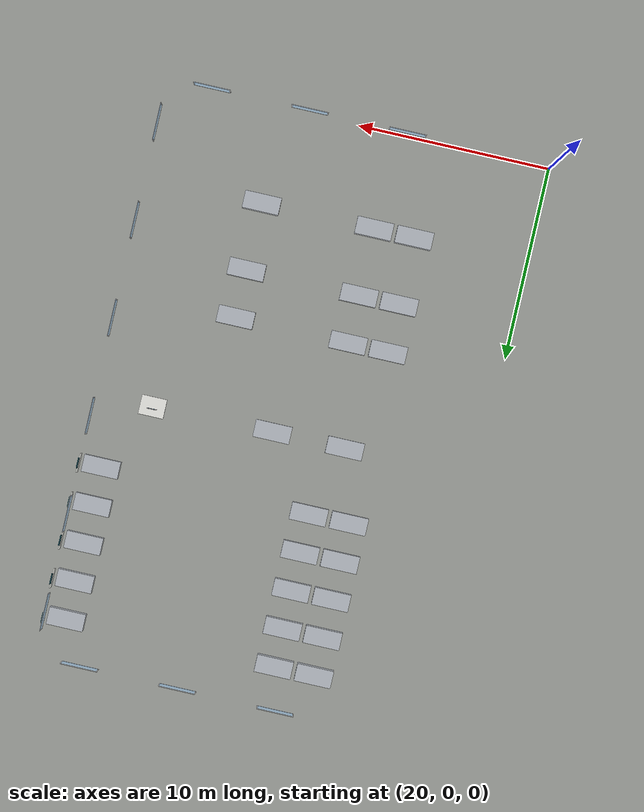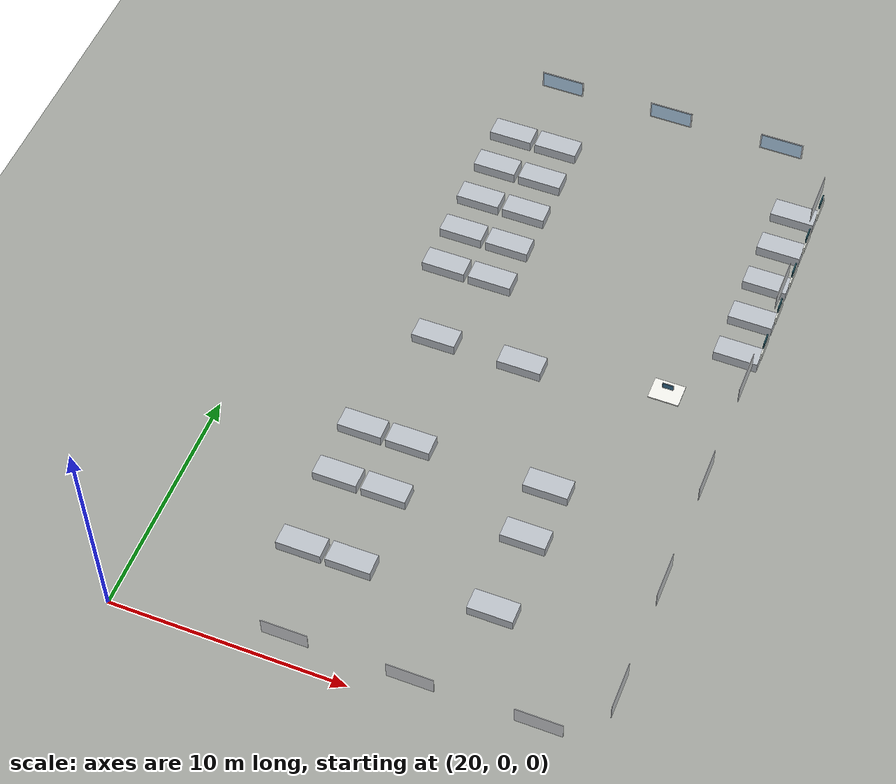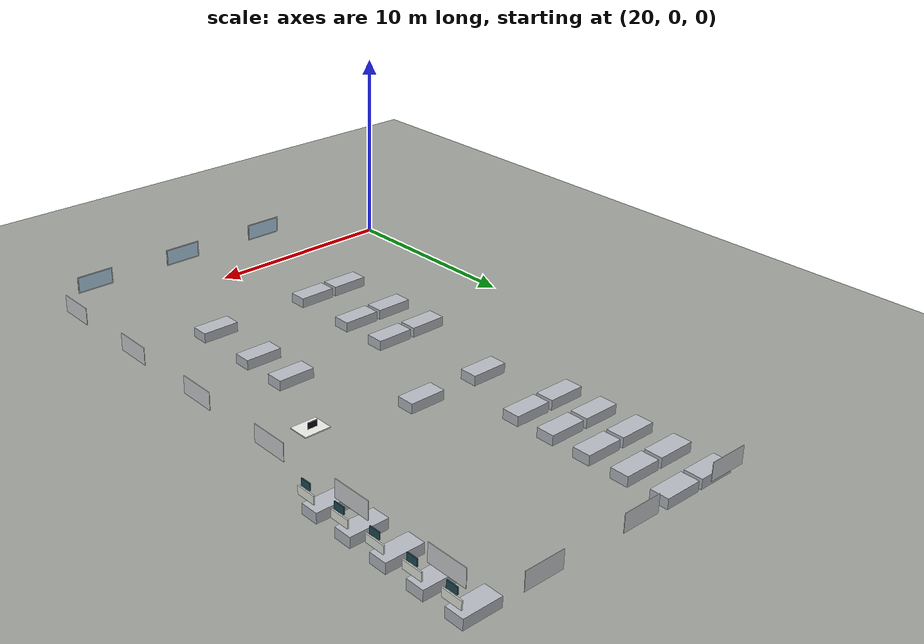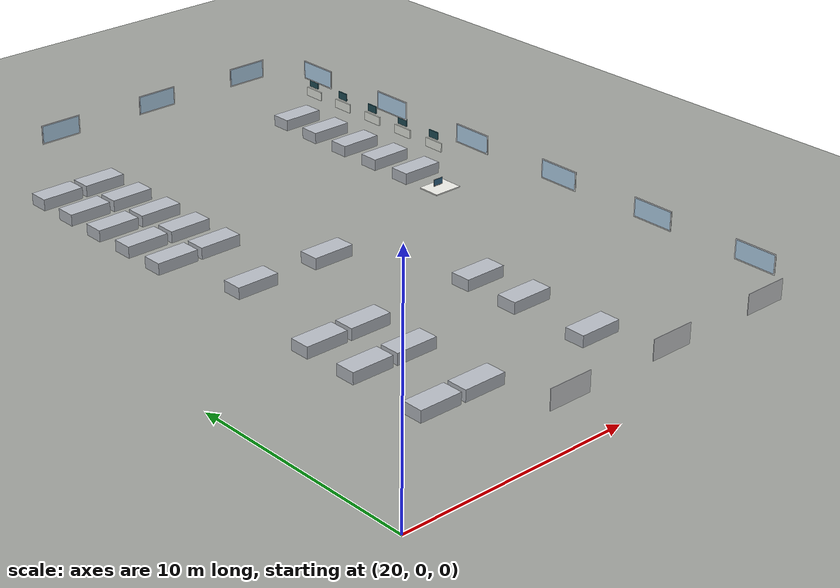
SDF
<sdf version="1.9">
 <world name="hospital">
  <model name="ground_plane">
   <static>true</static>
   <link name="link">
    <collision name="collision">
     <geometry><plane><normal>0 0 1</normal><size>200 200</size></plane></geometry>
    </collision>
    <visual name="visual">
     <pose>0 0 -0.03 0 0 0</pose>
     <cast_shadows>false</cast_shadows>
     <geometry><plane><normal>0 0 1</normal><size>200 200</size></plane></geometry>
     <material>
      <ambient>0.310 0.315 0.305 1.0</ambient>
      <diffuse>0.620 0.630 0.610 1.0</diffuse>
      <specular>0.14 0.14 0.14 1</specular>
      <emissive>0.000 0.000 0.000 1</emissive>
     </material>
    </visual>
   </link>
  </model>
  <model name="bed_7">
   <static>true</static>
   <pose>25.95 20.0 0.25 0 0 0</pose>
   <link name="link">
    <collision name="c">
     <geometry><box><size>1.8999999999999986 0.8999999999999986 0.5</size></box></geometry>
    </collision>
    <visual name="v">
     <visibility_flags>2</visibility_flags>
     <geometry><box><size>1.8999999999999986 0.8999999999999986 0.5</size></box></geometry>
     <material>
      <ambient>0.360 0.370 0.385 1.0</ambient>
      <diffuse>0.720 0.740 0.770 1.0</diffuse>
      <specular>0.14 0.14 0.14 1</specular>
      <emissive>0.000 0.000 0.000 1</emissive>
     </material>
    </visual>
   </link>
  </model>
  <model name="bed_9">
   <static>true</static>
   <pose>25.95 24.0 0.25 0 0 0</pose>
   <link name="link">
    <collision name="c">
     <geometry><box><size>1.8999999999999986 0.8999999999999986 0.5</size></box></geometry>
    </collision>
    <visual name="v">
     <visibility_flags>2</visibility_flags>
     <geometry><box><size>1.8999999999999986 0.8999999999999986 0.5</size></box></geometry>
     <material>
      <ambient>0.360 0.370 0.385 1.0</ambient>
      <diffuse>0.720 0.740 0.770 1.0</diffuse>
      <specular>0.14 0.14 0.14 1</specular>
      <emissive>0.000 0.000 0.000 1</emissive>
     </material>
    </visual>
   </link>
  </model>
  <model name="bed_11">
   <static>true</static>
   <pose>25.95 28.0 0.25 0 0 0</pose>
   <link name="link">
    <collision name="c">
     <geometry><box><size>1.8999999999999986 0.8999999999999986 0.5</size></box></geometry>
    </collision>
    <visual name="v">
     <visibility_flags>2</visibility_flags>
     <geometry><box><size>1.8999999999999986 0.8999999999999986 0.5</size></box></geometry>
     <material>
      <ambient>0.360 0.370 0.385 1.0</ambient>
      <diffuse>0.720 0.740 0.770 1.0</diffuse>
      <specular>0.14 0.14 0.14 1</specular>
      <emissive>0.000 0.000 0.000 1</emissive>
     </material>
    </visual>
   </link>
  </model>
  <model name="bed_12">
   <static>true</static>
   <pose>28.05 20.0 0.25 0 0 0</pose>
   <link name="link">
    <collision name="c">
     <geometry><box><size>1.8999999999999986 0.8999999999999986 0.5</size></box></geometry>
    </collision>
    <visual name="v">
     <visibility_flags>2</visibility_flags>
     <geometry><box><size>1.8999999999999986 0.8999999999999986 0.5</size></box></geometry>
     <material>
      <ambient>0.360 0.370 0.385 1.0</ambient>
      <diffuse>0.720 0.740 0.770 1.0</diffuse>
      <specular>0.14 0.14 0.14 1</specular>
      <emissive>0.000 0.000 0.000 1</emissive>
     </material>
    </visual>
   </link>
  </model>
  <model name="bed_13">
   <static>true</static>
   <pose>38.95 20.0 0.25 0 0 0</pose>
   <link name="link">
    <collision name="c">
     <geometry><box><size>1.8999999999999986 0.8999999999999986 0.5</size></box></geometry>
    </collision>
    <visual name="v">
     <visibility_flags>2</visibility_flags>
     <geometry><box><size>1.8999999999999986 0.8999999999999986 0.5</size></box></geometry>
     <material>
      <ambient>0.360 0.370 0.385 1.0</ambient>
      <diffuse>0.720 0.740 0.770 1.0</diffuse>
      <specular>0.14 0.14 0.14 1</specular>
      <emissive>0.000 0.000 0.000 1</emissive>
     </material>
    </visual>
   </link>
  </model>
  <model name="bed_14">
   <static>true</static>
   <pose>28.05 24.0 0.25 0 0 0</pose>
   <link name="link">
    <collision name="c">
     <geometry><box><size>1.8999999999999986 0.8999999999999986 0.5</size></box></geometry>
    </collision>
    <visual name="v">
     <visibility_flags>2</visibility_flags>
     <geometry><box><size>1.8999999999999986 0.8999999999999986 0.5</size></box></geometry>
     <material>
      <ambient>0.360 0.370 0.385 1.0</ambient>
      <diffuse>0.720 0.740 0.770 1.0</diffuse>
      <specular>0.14 0.14 0.14 1</specular>
      <emissive>0.000 0.000 0.000 1</emissive>
     </material>
    </visual>
   </link>
  </model>
  <model name="bed_15">
   <static>true</static>
   <pose>38.95 24.0 0.25 0 0 0</pose>
   <link name="link">
    <collision name="c">
     <geometry><box><size>1.8999999999999986 0.8999999999999986 0.5</size></box></geometry>
    </collision>
    <visual name="v">
     <visibility_flags>2</visibility_flags>
     <geometry><box><size>1.8999999999999986 0.8999999999999986 0.5</size></box></geometry>
     <material>
      <ambient>0.360 0.370 0.385 1.0</ambient>
      <diffuse>0.720 0.740 0.770 1.0</diffuse>
      <specular>0.14 0.14 0.14 1</specular>
      <emissive>0.000 0.000 0.000 1</emissive>
     </material>
    </visual>
   </link>
  </model>
  <model name="bed_16">
   <static>true</static>
   <pose>28.05 28.0 0.25 0 0 0</pose>
   <link name="link">
    <collision name="c">
     <geometry><box><size>1.8999999999999986 0.8999999999999986 0.5</size></box></geometry>
    </collision>
    <visual name="v">
     <visibility_flags>2</visibility_flags>
     <geometry><box><size>1.8999999999999986 0.8999999999999986 0.5</size></box></geometry>
     <material>
      <ambient>0.360 0.370 0.385 1.0</ambient>
      <diffuse>0.720 0.740 0.770 1.0</diffuse>
      <specular>0.14 0.14 0.14 1</specular>
      <emissive>0.000 0.000 0.000 1</emissive>
     </material>
    </visual>
   </link>
  </model>
  <model name="bed_17">
   <static>true</static>
   <pose>38.95 28.0 0.25 0 0 0</pose>
   <link name="link">
    <collision name="c">
     <geometry><box><size>1.8999999999999986 0.8999999999999986 0.5</size></box></geometry>
    </collision>
    <visual name="v">
     <visibility_flags>2</visibility_flags>
     <geometry><box><size>1.8999999999999986 0.8999999999999986 0.5</size></box></geometry>
     <material>
      <ambient>0.360 0.370 0.385 1.0</ambient>
      <diffuse>0.720 0.740 0.770 1.0</diffuse>
      <specular>0.14 0.14 0.14 1</specular>
      <emissive>0.000 0.000 0.000 1</emissive>
     </material>
    </visual>
   </link>
  </model>
  <model name="bed_19">
   <static>true</static>
   <pose>25.95 5.0 0.25 0 0 0</pose>
   <link name="link">
    <collision name="c">
     <geometry><box><size>1.8999999999999986 0.9000000000000004 0.5</size></box></geometry>
    </collision>
    <visual name="v">
     <visibility_flags>2</visibility_flags>
     <geometry><box><size>1.8999999999999986 0.9000000000000004 0.5</size></box></geometry>
     <material>
      <ambient>0.360 0.370 0.385 1.0</ambient>
      <diffuse>0.720 0.740 0.770 1.0</diffuse>
      <specular>0.14 0.14 0.14 1</specular>
      <emissive>0.000 0.000 0.000 1</emissive>
     </material>
    </visual>
   </link>
  </model>
  <model name="bed_21">
   <static>true</static>
   <pose>25.95 8.5 0.25 0 0 0</pose>
   <link name="link">
    <collision name="c">
     <geometry><box><size>1.8999999999999986 0.8999999999999986 0.5</size></box></geometry>
    </collision>
    <visual name="v">
     <visibility_flags>2</visibility_flags>
     <geometry><box><size>1.8999999999999986 0.8999999999999986 0.5</size></box></geometry>
     <material>
      <ambient>0.360 0.370 0.385 1.0</ambient>
      <diffuse>0.720 0.740 0.770 1.0</diffuse>
      <specular>0.14 0.14 0.14 1</specular>
      <emissive>0.000 0.000 0.000 1</emissive>
     </material>
    </visual>
   </link>
  </model>
  <model name="bed_22">
   <static>true</static>
   <pose>28.05 5.0 0.25 0 0 0</pose>
   <link name="link">
    <collision name="c">
     <geometry><box><size>1.8999999999999986 0.9000000000000004 0.5</size></box></geometry>
    </collision>
    <visual name="v">
     <visibility_flags>2</visibility_flags>
     <geometry><box><size>1.8999999999999986 0.9000000000000004 0.5</size></box></geometry>
     <material>
      <ambient>0.360 0.370 0.385 1.0</ambient>
      <diffuse>0.720 0.740 0.770 1.0</diffuse>
      <specular>0.14 0.14 0.14 1</specular>
      <emissive>0.000 0.000 0.000 1</emissive>
     </material>
    </visual>
   </link>
  </model>
  <model name="bed_23">
   <static>true</static>
   <pose>33.95 5.0 0.25 0 0 0</pose>
   <link name="link">
    <collision name="c">
     <geometry><box><size>1.8999999999999986 0.9000000000000004 0.5</size></box></geometry>
    </collision>
    <visual name="v">
     <visibility_flags>2</visibility_flags>
     <geometry><box><size>1.8999999999999986 0.9000000000000004 0.5</size></box></geometry>
     <material>
      <ambient>0.360 0.370 0.385 1.0</ambient>
      <diffuse>0.720 0.740 0.770 1.0</diffuse>
      <specular>0.14 0.14 0.14 1</specular>
      <emissive>0.000 0.000 0.000 1</emissive>
     </material>
    </visual>
   </link>
  </model>
  <model name="bed_24">
   <static>true</static>
   <pose>28.05 8.5 0.25 0 0 0</pose>
   <link name="link">
    <collision name="c">
     <geometry><box><size>1.8999999999999986 0.8999999999999986 0.5</size></box></geometry>
    </collision>
    <visual name="v">
     <visibility_flags>2</visibility_flags>
     <geometry><box><size>1.8999999999999986 0.8999999999999986 0.5</size></box></geometry>
     <material>
      <ambient>0.360 0.370 0.385 1.0</ambient>
      <diffuse>0.720 0.740 0.770 1.0</diffuse>
      <specular>0.14 0.14 0.14 1</specular>
      <emissive>0.000 0.000 0.000 1</emissive>
     </material>
    </visual>
   </link>
  </model>
  <model name="bed_25">
   <static>true</static>
   <pose>33.95 8.5 0.25 0 0 0</pose>
   <link name="link">
    <collision name="c">
     <geometry><box><size>1.8999999999999986 0.8999999999999986 0.5</size></box></geometry>
    </collision>
    <visual name="v">
     <visibility_flags>2</visibility_flags>
     <geometry><box><size>1.8999999999999986 0.8999999999999986 0.5</size></box></geometry>
     <material>
      <ambient>0.360 0.370 0.385 1.0</ambient>
      <diffuse>0.720 0.740 0.770 1.0</diffuse>
      <specular>0.14 0.14 0.14 1</specular>
      <emissive>0.000 0.000 0.000 1</emissive>
     </material>
    </visual>
   </link>
  </model>
  <model name="bed_30">
   <static>true</static>
   <pose>27.0 16.3 0.25 0 0 0</pose>
   <link name="link">
    <collision name="c">
     <geometry><box><size>1.8999999999999986 0.9000000000000004 0.5</size></box></geometry>
    </collision>
    <visual name="v">
     <visibility_flags>2</visibility_flags>
     <geometry><box><size>1.8999999999999986 0.9000000000000004 0.5</size></box></geometry>
     <material>
      <ambient>0.360 0.370 0.385 1.0</ambient>
      <diffuse>0.720 0.740 0.770 1.0</diffuse>
      <specular>0.14 0.14 0.14 1</specular>
      <emissive>0.000 0.000 0.000 1</emissive>
     </material>
    </visual>
   </link>
  </model>
  <model name="bed_31">
   <static>true</static>
   <pose>30.8 16.3 0.25 0 0 0</pose>
   <link name="link">
    <collision name="c">
     <geometry><box><size>1.8999999999999986 0.9000000000000004 0.5</size></box></geometry>
    </collision>
    <visual name="v">
     <visibility_flags>2</visibility_flags>
     <geometry><box><size>1.8999999999999986 0.9000000000000004 0.5</size></box></geometry>
     <material>
      <ambient>0.360 0.370 0.385 1.0</ambient>
      <diffuse>0.720 0.740 0.770 1.0</diffuse>
      <specular>0.14 0.14 0.14 1</specular>
      <emissive>0.000 0.000 0.000 1</emissive>
     </material>
    </visual>
   </link>
  </model>
  <model name="bed_37">
   <static>true</static>
   <pose>25.95 22.0 0.25 0 0 0</pose>
   <link name="link">
    <collision name="c">
     <geometry><box><size>1.8999999999999986 0.8999999999999986 0.5</size></box></geometry>
    </collision>
    <visual name="v">
     <visibility_flags>2</visibility_flags>
     <geometry><box><size>1.8999999999999986 0.8999999999999986 0.5</size></box></geometry>
     <material>
      <ambient>0.360 0.370 0.385 1.0</ambient>
      <diffuse>0.720 0.740 0.770 1.0</diffuse>
      <specular>0.14 0.14 0.14 1</specular>
      <emissive>0.000 0.000 0.000 1</emissive>
     </material>
    </visual>
   </link>
  </model>
  <model name="bed_39">
   <static>true</static>
   <pose>25.95 26.0 0.25 0 0 0</pose>
   <link name="link">
    <collision name="c">
     <geometry><box><size>1.8999999999999986 0.8999999999999986 0.5</size></box></geometry>
    </collision>
    <visual name="v">
     <visibility_flags>2</visibility_flags>
     <geometry><box><size>1.8999999999999986 0.8999999999999986 0.5</size></box></geometry>
     <material>
      <ambient>0.360 0.370 0.385 1.0</ambient>
      <diffuse>0.720 0.740 0.770 1.0</diffuse>
      <specular>0.14 0.14 0.14 1</specular>
      <emissive>0.000 0.000 0.000 1</emissive>
     </material>
    </visual>
   </link>
  </model>
  <model name="bed_40">
   <static>true</static>
   <pose>28.05 22.0 0.25 0 0 0</pose>
   <link name="link">
    <collision name="c">
     <geometry><box><size>1.8999999999999986 0.8999999999999986 0.5</size></box></geometry>
    </collision>
    <visual name="v">
     <visibility_flags>2</visibility_flags>
     <geometry><box><size>1.8999999999999986 0.8999999999999986 0.5</size></box></geometry>
     <material>
      <ambient>0.360 0.370 0.385 1.0</ambient>
      <diffuse>0.720 0.740 0.770 1.0</diffuse>
      <specular>0.14 0.14 0.14 1</specular>
      <emissive>0.000 0.000 0.000 1</emissive>
     </material>
    </visual>
   </link>
  </model>
  <model name="bed_41">
   <static>true</static>
   <pose>38.95 22.0 0.25 0 0 0</pose>
   <link name="link">
    <collision name="c">
     <geometry><box><size>1.8999999999999986 0.8999999999999986 0.5</size></box></geometry>
    </collision>
    <visual name="v">
     <visibility_flags>2</visibility_flags>
     <geometry><box><size>1.8999999999999986 0.8999999999999986 0.5</size></box></geometry>
     <material>
      <ambient>0.360 0.370 0.385 1.0</ambient>
      <diffuse>0.720 0.740 0.770 1.0</diffuse>
      <specular>0.14 0.14 0.14 1</specular>
      <emissive>0.000 0.000 0.000 1</emissive>
     </material>
    </visual>
   </link>
  </model>
  <model name="bed_42">
   <static>true</static>
   <pose>28.05 26.0 0.25 0 0 0</pose>
   <link name="link">
    <collision name="c">
     <geometry><box><size>1.8999999999999986 0.8999999999999986 0.5</size></box></geometry>
    </collision>
    <visual name="v">
     <visibility_flags>2</visibility_flags>
     <geometry><box><size>1.8999999999999986 0.8999999999999986 0.5</size></box></geometry>
     <material>
      <ambient>0.360 0.370 0.385 1.0</ambient>
      <diffuse>0.720 0.740 0.770 1.0</diffuse>
      <specular>0.14 0.14 0.14 1</specular>
      <emissive>0.000 0.000 0.000 1</emissive>
     </material>
    </visual>
   </link>
  </model>
  <model name="bed_43">
   <static>true</static>
   <pose>38.95 26.0 0.25 0 0 0</pose>
   <link name="link">
    <collision name="c">
     <geometry><box><size>1.8999999999999986 0.8999999999999986 0.5</size></box></geometry>
    </collision>
    <visual name="v">
     <visibility_flags>2</visibility_flags>
     <geometry><box><size>1.8999999999999986 0.8999999999999986 0.5</size></box></geometry>
     <material>
      <ambient>0.360 0.370 0.385 1.0</ambient>
      <diffuse>0.720 0.740 0.770 1.0</diffuse>
      <specular>0.14 0.14 0.14 1</specular>
      <emissive>0.000 0.000 0.000 1</emissive>
     </material>
    </visual>
   </link>
  </model>
  <model name="bed_45">
   <static>true</static>
   <pose>25.95 11.0 0.25 0 0 0</pose>
   <link name="link">
    <collision name="c">
     <geometry><box><size>1.8999999999999986 0.8999999999999986 0.5</size></box></geometry>
    </collision>
    <visual name="v">
     <visibility_flags>2</visibility_flags>
     <geometry><box><size>1.8999999999999986 0.8999999999999986 0.5</size></box></geometry>
     <material>
      <ambient>0.360 0.370 0.385 1.0</ambient>
      <diffuse>0.720 0.740 0.770 1.0</diffuse>
      <specular>0.14 0.14 0.14 1</specular>
      <emissive>0.000 0.000 0.000 1</emissive>
     </material>
    </visual>
   </link>
  </model>
  <model name="bed_46">
   <static>true</static>
   <pose>28.05 11.0 0.25 0 0 0</pose>
   <link name="link">
    <collision name="c">
     <geometry><box><size>1.8999999999999986 0.8999999999999986 0.5</size></box></geometry>
    </collision>
    <visual name="v">
     <visibility_flags>2</visibility_flags>
     <geometry><box><size>1.8999999999999986 0.8999999999999986 0.5</size></box></geometry>
     <material>
      <ambient>0.360 0.370 0.385 1.0</ambient>
      <diffuse>0.720 0.740 0.770 1.0</diffuse>
      <specular>0.14 0.14 0.14 1</specular>
      <emissive>0.000 0.000 0.000 1</emissive>
     </material>
    </visual>
   </link>
  </model>
  <model name="bed_47">
   <static>true</static>
   <pose>33.95 11.0 0.25 0 0 0</pose>
   <link name="link">
    <collision name="c">
     <geometry><box><size>1.8999999999999986 0.8999999999999986 0.5</size></box></geometry>
    </collision>
    <visual name="v">
     <visibility_flags>2</visibility_flags>
     <geometry><box><size>1.8999999999999986 0.8999999999999986 0.5</size></box></geometry>
     <material>
      <ambient>0.360 0.370 0.385 1.0</ambient>
      <diffuse>0.720 0.740 0.770 1.0</diffuse>
      <specular>0.14 0.14 0.14 1</specular>
      <emissive>0.000 0.000 0.000 1</emissive>
     </material>
    </visual>
   </link>
  </model>
  <model name="bed_13_panel">
   <static>true</static>
   <pose>40.010000000000005 20.0 1.15 0 0 0</pose>
   <link name="link">
    <visual name="v">
     <cast_shadows>false</cast_shadows>
     <geometry><box><size>0.06 0.9899999999999985 0.4</size></box></geometry>
     <material>
      <ambient>0.460 0.465 0.450 1.0</ambient>
      <diffuse>0.920 0.930 0.900 1.0</diffuse>
      <specular>0.14 0.14 0.14 1</specular>
      <emissive>0.000 0.000 0.000 1</emissive>
     </material>
    </visual>
   </link>
  </model>
  <model name="bed_13_monitor">
   <static>true</static>
   <pose>40.010000000000005 20.0 1.615 0 0 0</pose>
   <link name="link">
    <visual name="v">
     <cast_shadows>false</cast_shadows>
     <geometry><box><size>0.05 0.5444999999999992 0.33</size></box></geometry>
     <material>
      <ambient>0.060 0.150 0.170 1.0</ambient>
      <diffuse>0.120 0.300 0.340 1.0</diffuse>
      <specular>0.14 0.14 0.14 1</specular>
      <emissive>0.042 0.105 0.119 1</emissive>
     </material>
    </visual>
   </link>
  </model>
  <model name="bed_15_panel">
   <static>true</static>
   <pose>40.010000000000005 24.0 1.15 0 0 0</pose>
   <link name="link">
    <visual name="v">
     <cast_shadows>false</cast_shadows>
     <geometry><box><size>0.06 0.9899999999999985 0.4</size></box></geometry>
     <material>
      <ambient>0.460 0.465 0.450 1.0</ambient>
      <diffuse>0.920 0.930 0.900 1.0</diffuse>
      <specular>0.14 0.14 0.14 1</specular>
      <emissive>0.000 0.000 0.000 1</emissive>
     </material>
    </visual>
   </link>
  </model>
  <model name="bed_15_monitor">
   <static>true</static>
   <pose>40.010000000000005 24.0 1.615 0 0 0</pose>
   <link name="link">
    <visual name="v">
     <cast_shadows>false</cast_shadows>
     <geometry><box><size>0.05 0.5444999999999992 0.33</size></box></geometry>
     <material>
      <ambient>0.060 0.150 0.170 1.0</ambient>
      <diffuse>0.120 0.300 0.340 1.0</diffuse>
      <specular>0.14 0.14 0.14 1</specular>
      <emissive>0.042 0.105 0.119 1</emissive>
     </material>
    </visual>
   </link>
  </model>
  <model name="bed_17_panel">
   <static>true</static>
   <pose>40.010000000000005 28.0 1.15 0 0 0</pose>
   <link name="link">
    <visual name="v">
     <cast_shadows>false</cast_shadows>
     <geometry><box><size>0.06 0.9899999999999985 0.4</size></box></geometry>
     <material>
      <ambient>0.460 0.465 0.450 1.0</ambient>
      <diffuse>0.920 0.930 0.900 1.0</diffuse>
      <specular>0.14 0.14 0.14 1</specular>
      <emissive>0.000 0.000 0.000 1</emissive>
     </material>
    </visual>
   </link>
  </model>
  <model name="bed_17_monitor">
   <static>true</static>
   <pose>40.010000000000005 28.0 1.615 0 0 0</pose>
   <link name="link">
    <visual name="v">
     <cast_shadows>false</cast_shadows>
     <geometry><box><size>0.05 0.5444999999999992 0.33</size></box></geometry>
     <material>
      <ambient>0.060 0.150 0.170 1.0</ambient>
      <diffuse>0.120 0.300 0.340 1.0</diffuse>
      <specular>0.14 0.14 0.14 1</specular>
      <emissive>0.042 0.105 0.119 1</emissive>
     </material>
    </visual>
   </link>
  </model>
  <model name="bed_41_panel">
   <static>true</static>
   <pose>40.010000000000005 22.0 1.15 0 0 0</pose>
   <link name="link">
    <visual name="v">
     <cast_shadows>false</cast_shadows>
     <geometry><box><size>0.06 0.9899999999999985 0.4</size></box></geometry>
     <material>
      <ambient>0.460 0.465 0.450 1.0</ambient>
      <diffuse>0.920 0.930 0.900 1.0</diffuse>
      <specular>0.14 0.14 0.14 1</specular>
      <emissive>0.000 0.000 0.000 1</emissive>
     </material>
    </visual>
   </link>
  </model>
  <model name="bed_41_monitor">
   <static>true</static>
   <pose>40.010000000000005 22.0 1.615 0 0 0</pose>
   <link name="link">
    <visual name="v">
     <cast_shadows>false</cast_shadows>
     <geometry><box><size>0.05 0.5444999999999992 0.33</size></box></geometry>
     <material>
      <ambient>0.060 0.150 0.170 1.0</ambient>
      <diffuse>0.120 0.300 0.340 1.0</diffuse>
      <specular>0.14 0.14 0.14 1</specular>
      <emissive>0.042 0.105 0.119 1</emissive>
     </material>
    </visual>
   </link>
  </model>
  <model name="bed_43_panel">
   <static>true</static>
   <pose>40.010000000000005 26.0 1.15 0 0 0</pose>
   <link name="link">
    <visual name="v">
     <cast_shadows>false</cast_shadows>
     <geometry><box><size>0.06 0.9899999999999985 0.4</size></box></geometry>
     <material>
      <ambient>0.460 0.465 0.450 1.0</ambient>
      <diffuse>0.920 0.930 0.900 1.0</diffuse>
      <specular>0.14 0.14 0.14 1</specular>
      <emissive>0.000 0.000 0.000 1</emissive>
     </material>
    </visual>
   </link>
  </model>
  <model name="bed_43_monitor">
   <static>true</static>
   <pose>40.010000000000005 26.0 1.615 0 0 0</pose>
   <link name="link">
    <visual name="v">
     <cast_shadows>false</cast_shadows>
     <geometry><box><size>0.05 0.5444999999999992 0.33</size></box></geometry>
     <material>
      <ambient>0.060 0.150 0.170 1.0</ambient>
      <diffuse>0.120 0.300 0.340 1.0</diffuse>
      <specular>0.14 0.14 0.14 1</specular>
      <emissive>0.042 0.105 0.119 1</emissive>
     </material>
    </visual>
   </link>
  </model>
  <model name="nurse_desk_top">
   <static>true</static>
   <pose>37.0 16.4 1.2249999999999999 0 0 0</pose>
   <link name="link">
    <visual name="v">
     <geometry><box><size>1.300000000000003 1.0000000000000022 0.05</size></box></geometry>
     <material>
      <ambient>0.465 0.465 0.455 1.0</ambient>
      <diffuse>0.930 0.930 0.910 1.0</diffuse>
      <specular>0.14 0.14 0.14 1</specular>
      <emissive>0.000 0.000 0.000 1</emissive>
     </material>
    </visual>
   </link>
  </model>
  <model name="nurse_desk_monitor">
   <static>true</static>
   <pose>37.0 16.52 1.44 0 0 0</pose>
   <link name="link">
    <visual name="v">
     <geometry><box><size>0.48 0.03 0.3</size></box></geometry>
     <material>
      <ambient>0.030 0.030 0.035 1.0</ambient>
      <diffuse>0.060 0.060 0.070 1.0</diffuse>
      <specular>0.14 0.14 0.14 1</specular>
      <emissive>0.000 0.000 0.000 1</emissive>
     </material>
    </visual>
   </link>
  </model>
  <model name="nurse_desk_screen">
   <static>true</static>
   <pose>37.0 16.503999999999998 1.45 0 0 0</pose>
   <link name="link">
    <visual name="v">
     <cast_shadows>false</cast_shadows>
     <geometry><box><size>0.44 0.004 0.26</size></box></geometry>
     <material>
      <ambient>0.100 0.210 0.275 1.0</ambient>
      <diffuse>0.200 0.420 0.550 1.0</diffuse>
      <specular>0.14 0.14 0.14 1</specular>
      <emissive>0.120 0.252 0.330 1</emissive>
     </material>
    </visual>
   </link>
  </model>
  <model name="wall_0_winf5">
   <static>true</static>
   <pose>27.5375 0.112 2.225 0 0 0</pose>
   <link name="link">
    <visual name="v">
     <cast_shadows>false</cast_shadows>
     <geometry><box><size>1.9000000000000001 0.024 0.85</size></box></geometry>
     <material>
      <ambient>0.410 0.415 0.420 1.0</ambient>
      <diffuse>0.820 0.830 0.840 1.0</diffuse>
      <specular>0.14 0.14 0.14 1</specular>
      <emissive>0.000 0.000 0.000 1</emissive>
     </material>
    </visual>
   </link>
  </model>
  <model name="wall_0_win5">
   <static>true</static>
   <pose>27.5375 0.12 2.225 0 0 0</pose>
   <link name="link">
    <visual name="v">
     <cast_shadows>false</cast_shadows>
     <geometry><box><size>1.8 0.012 0.75</size></box></geometry>
     <material>
      <ambient>0.360 0.425 0.475 1.0</ambient>
      <diffuse>0.720 0.850 0.950 1.0</diffuse>
      <specular>0.14 0.14 0.14 1</specular>
      <emissive>0.468 0.552 0.617 1</emissive>
     </material>
    </visual>
   </link>
  </model>
  <model name="wall_0_winf6">
   <static>true</static>
   <pose>32.5625 0.112 2.225 0 0 0</pose>
   <link name="link">
    <visual name="v">
     <cast_shadows>false</cast_shadows>
     <geometry><box><size>1.9000000000000001 0.024 0.85</size></box></geometry>
     <material>
      <ambient>0.410 0.415 0.420 1.0</ambient>
      <diffuse>0.820 0.830 0.840 1.0</diffuse>
      <specular>0.14 0.14 0.14 1</specular>
      <emissive>0.000 0.000 0.000 1</emissive>
     </material>
    </visual>
   </link>
  </model>
  <model name="wall_0_win6">
   <static>true</static>
   <pose>32.5625 0.12 2.225 0 0 0</pose>
   <link name="link">
    <visual name="v">
     <cast_shadows>false</cast_shadows>
     <geometry><box><size>1.8 0.012 0.75</size></box></geometry>
     <material>
      <ambient>0.360 0.425 0.475 1.0</ambient>
      <diffuse>0.720 0.850 0.950 1.0</diffuse>
      <specular>0.14 0.14 0.14 1</specular>
      <emissive>0.468 0.552 0.617 1</emissive>
     </material>
    </visual>
   </link>
  </model>
  <model name="wall_0_winf7">
   <static>true</static>
   <pose>37.5875 0.112 2.225 0 0 0</pose>
   <link name="link">
    <visual name="v">
     <cast_shadows>false</cast_shadows>
     <geometry><box><size>1.9000000000000001 0.024 0.85</size></box></geometry>
     <material>
      <ambient>0.410 0.415 0.420 1.0</ambient>
      <diffuse>0.820 0.830 0.840 1.0</diffuse>
      <specular>0.14 0.14 0.14 1</specular>
      <emissive>0.000 0.000 0.000 1</emissive>
     </material>
    </visual>
   </link>
  </model>
  <model name="wall_0_win7">
   <static>true</static>
   <pose>37.5875 0.12 2.225 0 0 0</pose>
   <link name="link">
    <visual name="v">
     <cast_shadows>false</cast_shadows>
     <geometry><box><size>1.8 0.012 0.75</size></box></geometry>
     <material>
      <ambient>0.360 0.425 0.475 1.0</ambient>
      <diffuse>0.720 0.850 0.950 1.0</diffuse>
      <specular>0.14 0.14 0.14 1</specular>
      <emissive>0.468 0.552 0.617 1</emissive>
     </material>
    </visual>
   </link>
  </model>
  <model name="wall_1_winf5">
   <static>true</static>
   <pose>27.5375 29.888 2.225 0 0 0</pose>
   <link name="link">
    <visual name="v">
     <cast_shadows>false</cast_shadows>
     <geometry><box><size>1.9000000000000001 0.024 0.85</size></box></geometry>
     <material>
      <ambient>0.410 0.415 0.420 1.0</ambient>
      <diffuse>0.820 0.830 0.840 1.0</diffuse>
      <specular>0.14 0.14 0.14 1</specular>
      <emissive>0.000 0.000 0.000 1</emissive>
     </material>
    </visual>
   </link>
  </model>
  <model name="wall_1_win5">
   <static>true</static>
   <pose>27.5375 29.880000000000003 2.225 0 0 0</pose>
   <link name="link">
    <visual name="v">
     <cast_shadows>false</cast_shadows>
     <geometry><box><size>1.8 0.012 0.75</size></box></geometry>
     <material>
      <ambient>0.360 0.425 0.475 1.0</ambient>
      <diffuse>0.720 0.850 0.950 1.0</diffuse>
      <specular>0.14 0.14 0.14 1</specular>
      <emissive>0.468 0.552 0.617 1</emissive>
     </material>
    </visual>
   </link>
  </model>
  <model name="wall_1_winf6">
   <static>true</static>
   <pose>32.5625 29.888 2.225 0 0 0</pose>
   <link name="link">
    <visual name="v">
     <cast_shadows>false</cast_shadows>
     <geometry><box><size>1.9000000000000001 0.024 0.85</size></box></geometry>
     <material>
      <ambient>0.410 0.415 0.420 1.0</ambient>
      <diffuse>0.820 0.830 0.840 1.0</diffuse>
      <specular>0.14 0.14 0.14 1</specular>
      <emissive>0.000 0.000 0.000 1</emissive>
     </material>
    </visual>
   </link>
  </model>
  <model name="wall_1_win6">
   <static>true</static>
   <pose>32.5625 29.880000000000003 2.225 0 0 0</pose>
   <link name="link">
    <visual name="v">
     <cast_shadows>false</cast_shadows>
     <geometry><box><size>1.8 0.012 0.75</size></box></geometry>
     <material>
      <ambient>0.360 0.425 0.475 1.0</ambient>
      <diffuse>0.720 0.850 0.950 1.0</diffuse>
      <specular>0.14 0.14 0.14 1</specular>
      <emissive>0.468 0.552 0.617 1</emissive>
     </material>
    </visual>
   </link>
  </model>
  <model name="wall_1_winf7">
   <static>true</static>
   <pose>37.5875 29.888 2.225 0 0 0</pose>
   <link name="link">
    <visual name="v">
     <cast_shadows>false</cast_shadows>
     <geometry><box><size>1.9000000000000001 0.024 0.85</size></box></geometry>
     <material>
      <ambient>0.410 0.415 0.420 1.0</ambient>
      <diffuse>0.820 0.830 0.840 1.0</diffuse>
      <specular>0.14 0.14 0.14 1</specular>
      <emissive>0.000 0.000 0.000 1</emissive>
     </material>
    </visual>
   </link>
  </model>
  <model name="wall_1_win7">
   <static>true</static>
   <pose>37.5875 29.880000000000003 2.225 0 0 0</pose>
   <link name="link">
    <visual name="v">
     <cast_shadows>false</cast_shadows>
     <geometry><box><size>1.8 0.012 0.75</size></box></geometry>
     <material>
      <ambient>0.360 0.425 0.475 1.0</ambient>
      <diffuse>0.720 0.850 0.950 1.0</diffuse>
      <specular>0.14 0.14 0.14 1</specular>
      <emissive>0.468 0.552 0.617 1</emissive>
     </material>
    </visual>
   </link>
  </model>
  <model name="wall_3_winf0">
   <static>true</static>
   <pose>39.888 2.416666666666665 2.225 0 0 0</pose>
   <link name="link">
    <visual name="v">
     <cast_shadows>false</cast_shadows>
     <geometry><box><size>0.024 1.9000000000000001 0.85</size></box></geometry>
     <material>
      <ambient>0.410 0.415 0.420 1.0</ambient>
      <diffuse>0.820 0.830 0.840 1.0</diffuse>
      <specular>0.14 0.14 0.14 1</specular>
      <emissive>0.000 0.000 0.000 1</emissive>
     </material>
    </visual>
   </link>
  </model>
  <model name="wall_3_win0">
   <static>true</static>
   <pose>39.879999999999995 2.416666666666665 2.225 0 0 0</pose>
   <link name="link">
    <visual name="v">
     <cast_shadows>false</cast_shadows>
     <geometry><box><size>0.012 1.8 0.75</size></box></geometry>
     <material>
      <ambient>0.360 0.425 0.475 1.0</ambient>
      <diffuse>0.720 0.850 0.950 1.0</diffuse>
      <specular>0.14 0.14 0.14 1</specular>
      <emissive>0.468 0.552 0.617 1</emissive>
     </material>
    </visual>
   </link>
  </model>
  <model name="wall_3_winf1">
   <static>true</static>
   <pose>39.888 7.449999999999999 2.225 0 0 0</pose>
   <link name="link">
    <visual name="v">
     <cast_shadows>false</cast_shadows>
     <geometry><box><size>0.024 1.9000000000000001 0.85</size></box></geometry>
     <material>
      <ambient>0.410 0.415 0.420 1.0</ambient>
      <diffuse>0.820 0.830 0.840 1.0</diffuse>
      <specular>0.14 0.14 0.14 1</specular>
      <emissive>0.000 0.000 0.000 1</emissive>
     </material>
    </visual>
   </link>
  </model>
  <model name="wall_3_win1">
   <static>true</static>
   <pose>39.879999999999995 7.449999999999999 2.225 0 0 0</pose>
   <link name="link">
    <visual name="v">
     <cast_shadows>false</cast_shadows>
     <geometry><box><size>0.012 1.8 0.75</size></box></geometry>
     <material>
      <ambient>0.360 0.425 0.475 1.0</ambient>
      <diffuse>0.720 0.850 0.950 1.0</diffuse>
      <specular>0.14 0.14 0.14 1</specular>
      <emissive>0.468 0.552 0.617 1</emissive>
     </material>
    </visual>
   </link>
  </model>
  <model name="wall_3_winf2">
   <static>true</static>
   <pose>39.888 12.483333333333334 2.225 0 0 0</pose>
   <link name="link">
    <visual name="v">
     <cast_shadows>false</cast_shadows>
     <geometry><box><size>0.024 1.9000000000000001 0.85</size></box></geometry>
     <material>
      <ambient>0.410 0.415 0.420 1.0</ambient>
      <diffuse>0.820 0.830 0.840 1.0</diffuse>
      <specular>0.14 0.14 0.14 1</specular>
      <emissive>0.000 0.000 0.000 1</emissive>
     </material>
    </visual>
   </link>
  </model>
  <model name="wall_3_win2">
   <static>true</static>
   <pose>39.879999999999995 12.483333333333334 2.225 0 0 0</pose>
   <link name="link">
    <visual name="v">
     <cast_shadows>false</cast_shadows>
     <geometry><box><size>0.012 1.8 0.75</size></box></geometry>
     <material>
      <ambient>0.360 0.425 0.475 1.0</ambient>
      <diffuse>0.720 0.850 0.950 1.0</diffuse>
      <specular>0.14 0.14 0.14 1</specular>
      <emissive>0.468 0.552 0.617 1</emissive>
     </material>
    </visual>
   </link>
  </model>
  <model name="wall_3_winf3">
   <static>true</static>
   <pose>39.888 17.51666666666667 2.225 0 0 0</pose>
   <link name="link">
    <visual name="v">
     <cast_shadows>false</cast_shadows>
     <geometry><box><size>0.024 1.9000000000000001 0.85</size></box></geometry>
     <material>
      <ambient>0.410 0.415 0.420 1.0</ambient>
      <diffuse>0.820 0.830 0.840 1.0</diffuse>
      <specular>0.14 0.14 0.14 1</specular>
      <emissive>0.000 0.000 0.000 1</emissive>
     </material>
    </visual>
   </link>
  </model>
  <model name="wall_3_win3">
   <static>true</static>
   <pose>39.879999999999995 17.51666666666667 2.225 0 0 0</pose>
   <link name="link">
    <visual name="v">
     <cast_shadows>false</cast_shadows>
     <geometry><box><size>0.012 1.8 0.75</size></box></geometry>
     <material>
      <ambient>0.360 0.425 0.475 1.0</ambient>
      <diffuse>0.720 0.850 0.950 1.0</diffuse>
      <specular>0.14 0.14 0.14 1</specular>
      <emissive>0.468 0.552 0.617 1</emissive>
     </material>
    </visual>
   </link>
  </model>
  <model name="wall_3_winf4">
   <static>true</static>
   <pose>39.888 22.55 2.225 0 0 0</pose>
   <link name="link">
    <visual name="v">
     <cast_shadows>false</cast_shadows>
     <geometry><box><size>0.024 1.9000000000000001 0.85</size></box></geometry>
     <material>
      <ambient>0.410 0.415 0.420 1.0</ambient>
      <diffuse>0.820 0.830 0.840 1.0</diffuse>
      <specular>0.14 0.14 0.14 1</specular>
      <emissive>0.000 0.000 0.000 1</emissive>
     </material>
    </visual>
   </link>
  </model>
  <model name="wall_3_win4">
   <static>true</static>
   <pose>39.879999999999995 22.55 2.225 0 0 0</pose>
   <link name="link">
    <visual name="v">
     <cast_shadows>false</cast_shadows>
     <geometry><box><size>0.012 1.8 0.75</size></box></geometry>
     <material>
      <ambient>0.360 0.425 0.475 1.0</ambient>
      <diffuse>0.720 0.850 0.950 1.0</diffuse>
      <specular>0.14 0.14 0.14 1</specular>
      <emissive>0.468 0.552 0.617 1</emissive>
     </material>
    </visual>
   </link>
  </model>
  <model name="wall_3_winf5">
   <static>true</static>
   <pose>39.888 27.583333333333332 2.225 0 0 0</pose>
   <link name="link">
    <visual name="v">
     <cast_shadows>false</cast_shadows>
     <geometry><box><size>0.024 1.9000000000000001 0.85</size></box></geometry>
     <material>
      <ambient>0.410 0.415 0.420 1.0</ambient>
      <diffuse>0.820 0.830 0.840 1.0</diffuse>
      <specular>0.14 0.14 0.14 1</specular>
      <emissive>0.000 0.000 0.000 1</emissive>
     </material>
    </visual>
   </link>
  </model>
  <model name="wall_3_win5">
   <static>true</static>
   <pose>39.879999999999995 27.583333333333332 2.225 0 0 0</pose>
   <link name="link">
    <visual name="v">
     <cast_shadows>false</cast_shadows>
     <geometry><box><size>0.012 1.8 0.75</size></box></geometry>
     <material>
      <ambient>0.360 0.425 0.475 1.0</ambient>
      <diffuse>0.720 0.850 0.950 1.0</diffuse>
      <specular>0.14 0.14 0.14 1</specular>
      <emissive>0.468 0.552 0.617 1</emissive>
     </material>
    </visual>
   </link>
  </model>
 </world>
</sdf>
